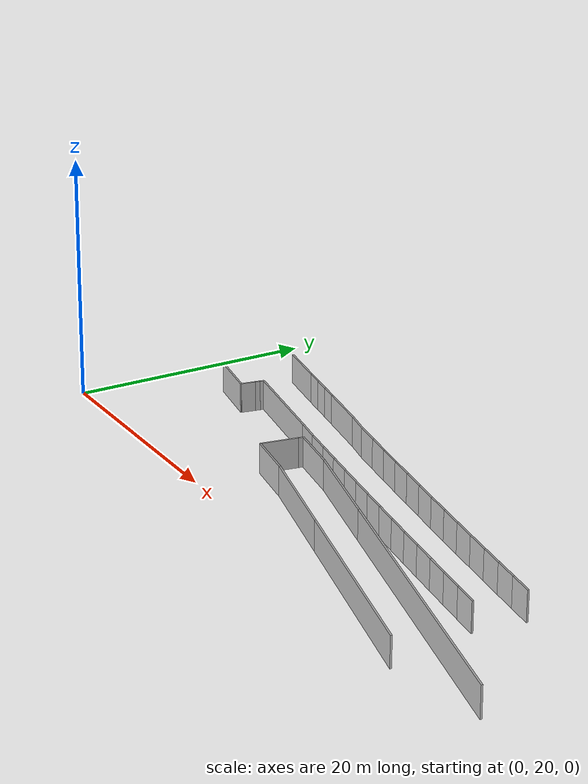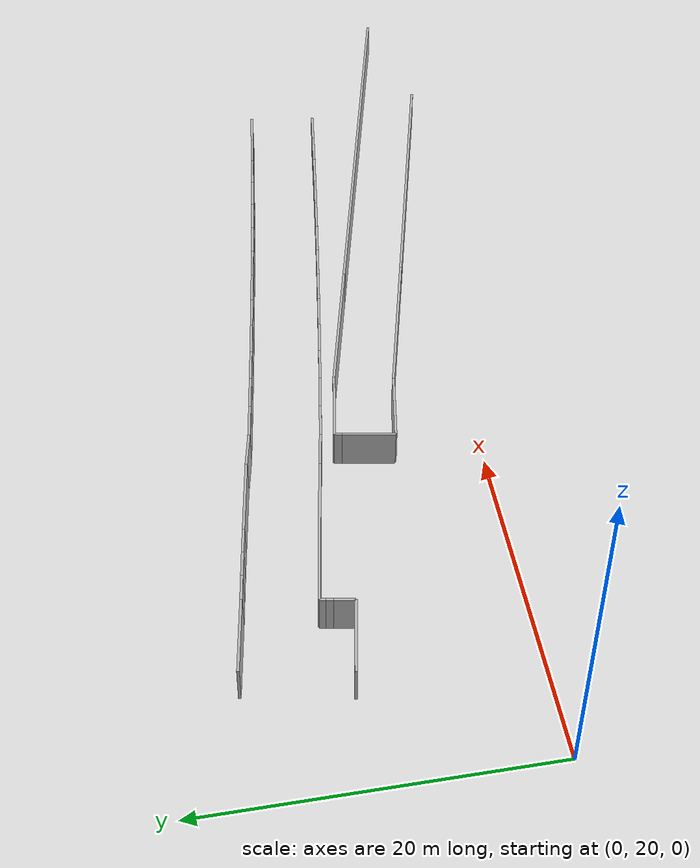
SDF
<?xml version="1.0" ?>
<sdf version="1.6">
  <model name="sps_2203">
    <pose frame="">0 0 0 0 -0 0</pose>
    <static>1</static>
    <self_collide>0</self_collide>
    <allow_auto_disable>0</allow_auto_disable>
    <link name="Wall33">
      <kinematic>0</kinematic>
      <gravity>1</gravity>
      <self_collide>0</self_collide>
      <collision name="collision">
        <geometry>
          <box>
            <size>9.35856 0.15 2.5</size>
          </box>
        </geometry>
        <pose frame="">0 0 0 0 -0 0</pose>
      </collision>
      <visual name="visual">
        <geometry>
          <box>
            <size>9.35856 0.15 2.5</size>
          </box>
        </geometry>
        <pose frame="">0 0 0 0 -0 0</pose>
        <cast_shadows>1</cast_shadows>
        <transparency>0.0</transparency>
      </visual>
      <pose frame="">14.7813 30.5347 1.25 0 0 -0.168777</pose>
    </link>
    <link name="Wall200">
      <kinematic>0</kinematic>
      <gravity>1</gravity>
      <self_collide>0</self_collide>
      <collision name="collision">
        <geometry>
          <box>
            <size>4.50047 0.15 2.5</size>
          </box>
        </geometry>
        <pose frame="">0 0 0 0 -0 0</pose>
      </collision>
      <visual name="visual">
        <geometry>
          <box>
            <size>4.50047 0.15 2.5</size>
          </box>
        </geometry>
        <pose frame="">0 0 0 0 -0 0</pose>
        <cast_shadows>1</cast_shadows>
        <transparency>0.0</transparency>
      </visual>
      <pose frame="">8.66296 35.7411 1.25 0 0 -0.168696</pose>
    </link>
    <link name="Wall202">
      <kinematic>0</kinematic>
      <gravity>1</gravity>
      <self_collide>0</self_collide>
      <collision name="collision">
        <geometry>
          <box>
            <size>17.6974 0.15 2.5</size>
          </box>
        </geometry>
        <pose frame="">0 0 0 0 -0 0</pose>
      </collision>
      <visual name="visual">
        <geometry>
          <box>
            <size>17.6974 0.15 2.5</size>
          </box>
        </geometry>
        <pose frame="">0 0 0 0 -0 0</pose>
        <cast_shadows>1</cast_shadows>
        <transparency>0.0</transparency>
      </visual>
      <pose frame="">43.0625 20.0047 1.25 0 -0 2.90063</pose>
    </link>
    <link name="Wall203">
      <kinematic>0</kinematic>
      <gravity>1</gravity>
      <self_collide>0</self_collide>
      <collision name="collision">
        <geometry>
          <box>
            <size>9.57358 0.15 2.5</size>
          </box>
        </geometry>
        <pose frame="">0 0 0 0 -0 0</pose>
      </collision>
      <visual name="visual">
        <geometry>
          <box>
            <size>9.57358 0.15 2.5</size>
          </box>
        </geometry>
        <pose frame="">0 0 0 0 -0 0</pose>
        <cast_shadows>1</cast_shadows>
        <transparency>0.0</transparency>
      </visual>
      <pose frame="">29.8209 23.2586 1.25 0 -0 2.90063</pose>
    </link>
    <link name="Wall295">
      <kinematic>0</kinematic>
      <gravity>1</gravity>
      <self_collide>0</self_collide>
      <collision name="collision">
        <geometry>
          <box>
            <size>3.07376 0.15 2.5</size>
          </box>
        </geometry>
        <pose frame="">0 0 0 0 -0 0</pose>
      </collision>
      <visual name="visual">
        <geometry>
          <box>
            <size>3.07376 0.15 2.5</size>
          </box>
        </geometry>
        <pose frame="">0 0 0 0 -0 0</pose>
        <cast_shadows>1</cast_shadows>
        <transparency>0.0</transparency>
      </visual>
      <pose frame="">21.1081 26.6262 1.25 0 0 -1.73465</pose>
    </link>
    <link name="Wall365">
      <kinematic>0</kinematic>
      <gravity>1</gravity>
      <self_collide>0</self_collide>
      <collision name="collision">
        <geometry>
          <box>
            <size>4.50641 0.15 2.5</size>
          </box>
        </geometry>
        <pose frame="">0 0 0 0 -0 0</pose>
      </collision>
      <visual name="visual">
        <geometry>
          <box>
            <size>4.50641 0.15 2.5</size>
          </box>
        </geometry>
        <pose frame="">0 0 0 0 -0 0</pose>
        <cast_shadows>1</cast_shadows>
        <transparency>0.0</transparency>
      </visual>
      <pose frame="">23.6518 28.1995 1.25 0 0 -0.163692</pose>
    </link>
    <link name="Wall439">
      <kinematic>0</kinematic>
      <gravity>1</gravity>
      <self_collide>0</self_collide>
      <collision name="collision">
        <geometry>
          <box>
            <size>0.400879 0.15 2.5</size>
          </box>
        </geometry>
        <pose frame="">0 0 0 0 -0 0</pose>
      </collision>
      <visual name="visual">
        <geometry>
          <box>
            <size>0.400879 0.15 2.5</size>
          </box>
        </geometry>
        <pose frame="">0 0 0 0 -0 0</pose>
        <cast_shadows>1</cast_shadows>
        <transparency>0.0</transparency>
      </visual>
      <pose frame="">10.0657 30.79 1.25 0 0 -1.74726</pose>
    </link>
    <link name="Wall440">
      <kinematic>0</kinematic>
      <gravity>1</gravity>
      <self_collide>0</self_collide>
      <collision name="collision">
        <geometry>
          <box>
            <size>2.19394 0.15 2.5</size>
          </box>
        </geometry>
        <pose frame="">0 0 0 0 -0 0</pose>
      </collision>
      <visual name="visual">
        <geometry>
          <box>
            <size>2.19394 0.15 2.5</size>
          </box>
        </geometry>
        <pose frame="">0 0 0 0 -0 0</pose>
        <cast_shadows>1</cast_shadows>
        <transparency>0.0</transparency>
      </visual>
      <pose frame="">20.4733 29.552 1.25 0 0 -0.180274</pose>
    </link>
    <link name="Wall441">
      <kinematic>0</kinematic>
      <gravity>1</gravity>
      <self_collide>0</self_collide>
      <collision name="collision">
        <geometry>
          <box>
            <size>4.37286 0.15 2.5</size>
          </box>
        </geometry>
        <pose frame="">0 0 0 0 -0 0</pose>
      </collision>
      <visual name="visual">
        <geometry>
          <box>
            <size>4.37286 0.15 2.5</size>
          </box>
        </geometry>
        <pose frame="">0 0 0 0 -0 0</pose>
        <cast_shadows>1</cast_shadows>
        <transparency>0.0</transparency>
      </visual>
      <pose frame="">23.0149 24.7554 1.25 0 0 -0.162852</pose>
    </link>
    <link name="Wall547">
      <kinematic>0</kinematic>
      <gravity>1</gravity>
      <self_collide>0</self_collide>
      <collision name="collision">
        <geometry>
          <box>
            <size>4.49949 0.15 2.5</size>
          </box>
        </geometry>
        <pose frame="">0 0 0 0 -0 0</pose>
      </collision>
      <visual name="visual">
        <geometry>
          <box>
            <size>4.49949 0.15 2.5</size>
          </box>
        </geometry>
        <pose frame="">0 0 0 0 -0 0</pose>
        <cast_shadows>1</cast_shadows>
        <transparency>0.0</transparency>
      </visual>
      <pose frame="">7.60625 29.817 1.25 0 -0 2.96515</pose>
    </link>
    <link name="Wall548">
      <kinematic>0</kinematic>
      <gravity>1</gravity>
      <self_collide>0</self_collide>
      <collision name="collision">
        <geometry>
          <box>
            <size>1.18918 0.15 2.5</size>
          </box>
        </geometry>
        <pose frame="">0 0 0 0 -0 0</pose>
      </collision>
      <visual name="visual">
        <geometry>
          <box>
            <size>1.18918 0.15 2.5</size>
          </box>
        </geometry>
        <pose frame="">0 0 0 0 -0 0</pose>
        <cast_shadows>1</cast_shadows>
        <transparency>0.0</transparency>
      </visual>
      <pose frame="">9.92577 30.0074 1.25 0 0 -1.74782</pose>
    </link>
    <link name="Wall549">
      <kinematic>0</kinematic>
      <gravity>1</gravity>
      <self_collide>0</self_collide>
      <collision name="collision">
        <geometry>
          <box>
            <size>0.340164 0.15 2.5</size>
          </box>
        </geometry>
        <pose frame="">0 0 0 0 -0 0</pose>
      </collision>
      <visual name="visual">
        <geometry>
          <box>
            <size>0.340164 0.15 2.5</size>
          </box>
        </geometry>
        <pose frame="">0 0 0 0 -0 0</pose>
        <cast_shadows>1</cast_shadows>
        <transparency>0.0</transparency>
      </visual>
      <pose frame="">10.1347 31.154 1.25 0 0 -1.77094</pose>
    </link>
    <link name="Wall615">
      <kinematic>0</kinematic>
      <gravity>1</gravity>
      <self_collide>0</self_collide>
      <collision name="collision">
        <geometry>
          <box>
            <size>0.429903 0.15 2.5</size>
          </box>
        </geometry>
        <pose frame="">0 0 0 0 -0 0</pose>
      </collision>
      <visual name="visual">
        <geometry>
          <box>
            <size>0.429903 0.15 2.5</size>
          </box>
        </geometry>
        <pose frame="">0 0 0 0 -0 0</pose>
        <cast_shadows>1</cast_shadows>
        <transparency>0.0</transparency>
      </visual>
      <pose frame="">21.3938 28.3546 1.25 0 0 -1.73394</pose>
    </link>
    <link name="Wall616">
      <kinematic>0</kinematic>
      <gravity>1</gravity>
      <self_collide>0</self_collide>
      <collision name="collision">
        <geometry>
          <box>
            <size>2.20188 0.15 2.5</size>
          </box>
        </geometry>
        <pose frame="">0 0 0 0 -0 0</pose>
      </collision>
      <visual name="visual">
        <geometry>
          <box>
            <size>2.20188 0.15 2.5</size>
          </box>
        </geometry>
        <pose frame="">0 0 0 0 -0 0</pose>
        <cast_shadows>1</cast_shadows>
        <transparency>0.0</transparency>
      </visual>
      <pose frame="">21.1452 33.6065 1.25 0 0 -0.20715</pose>
    </link>
    <link name="Wall617">
      <kinematic>0</kinematic>
      <gravity>1</gravity>
      <self_collide>0</self_collide>
      <collision name="collision">
        <geometry>
          <box>
            <size>8.85029 0.15 2.5</size>
          </box>
        </geometry>
        <pose frame="">0 0 0 0 -0 0</pose>
      </collision>
      <visual name="visual">
        <geometry>
          <box>
            <size>8.85029 0.15 2.5</size>
          </box>
        </geometry>
        <pose frame="">0 0 0 0 -0 0</pose>
        <cast_shadows>1</cast_shadows>
        <transparency>0.0</transparency>
      </visual>
      <pose frame="">30.1721 26.7763 1.25 0 0 -0.240956</pose>
    </link>
    <link name="Wall618">
      <kinematic>0</kinematic>
      <gravity>1</gravity>
      <self_collide>0</self_collide>
      <collision name="collision">
        <geometry>
          <box>
            <size>26.2423 0.15 2.5</size>
          </box>
        </geometry>
        <pose frame="">0 0 0 0 -0 0</pose>
      </collision>
      <visual name="visual">
        <geometry>
          <box>
            <size>26.2423 0.15 2.5</size>
          </box>
        </geometry>
        <pose frame="">0 0 0 0 -0 0</pose>
        <cast_shadows>1</cast_shadows>
        <transparency>0.0</transparency>
      </visual>
      <pose frame="">47.2115 22.5892 1.25 0 0 -0.240956</pose>
    </link>
    <link name="Wall4791">
      <kinematic>0</kinematic>
      <gravity>1</gravity>
      <self_collide>0</self_collide>
      <collision name="collision">
        <geometry>
          <box>
            <size>1.55218 0.15 2.5</size>
          </box>
        </geometry>
        <pose frame="">0 0 0 0 -0 0</pose>
      </collision>
      <visual name="visual">
        <geometry>
          <box>
            <size>1.55218 0.15 2.5</size>
          </box>
        </geometry>
        <pose frame="">0 0 0 0 -0 0</pose>
        <cast_shadows>1</cast_shadows>
        <transparency>0.0</transparency>
      </visual>
      <pose frame="">11.6475 35.2404 1.25 0 0 -0.15902</pose>
    </link>
    <link name="Wall4792">
      <kinematic>0</kinematic>
      <gravity>1</gravity>
      <self_collide>0</self_collide>
      <collision name="collision">
        <geometry>
          <box>
            <size>1.55208 0.15 2.5</size>
          </box>
        </geometry>
        <pose frame="">0 0 0 0 -0 0</pose>
      </collision>
      <visual name="visual">
        <geometry>
          <box>
            <size>1.55208 0.15 2.5</size>
          </box>
        </geometry>
        <pose frame="">0 0 0 0 -0 0</pose>
        <cast_shadows>1</cast_shadows>
        <transparency>0.0</transparency>
      </visual>
      <pose frame="">13.1796 34.9919 1.25 0 0 -0.162576</pose>
    </link>
    <link name="Wall4793">
      <kinematic>0</kinematic>
      <gravity>1</gravity>
      <self_collide>0</self_collide>
      <collision name="collision">
        <geometry>
          <box>
            <size>1.55225 0.15 2.5</size>
          </box>
        </geometry>
        <pose frame="">0 0 0 0 -0 0</pose>
      </collision>
      <visual name="visual">
        <geometry>
          <box>
            <size>1.55225 0.15 2.5</size>
          </box>
        </geometry>
        <pose frame="">0 0 0 0 -0 0</pose>
        <cast_shadows>1</cast_shadows>
        <transparency>0.0</transparency>
      </visual>
      <pose frame="">14.7109 34.7378 1.25 0 0 -0.166345</pose>
    </link>
    <link name="Wall4794">
      <kinematic>0</kinematic>
      <gravity>1</gravity>
      <self_collide>0</self_collide>
      <collision name="collision">
        <geometry>
          <box>
            <size>4.65673 0.15 2.5</size>
          </box>
        </geometry>
        <pose frame="">0 0 0 0 -0 0</pose>
      </collision>
      <visual name="visual">
        <geometry>
          <box>
            <size>4.65673 0.15 2.5</size>
          </box>
        </geometry>
        <pose frame="">0 0 0 0 -0 0</pose>
        <cast_shadows>1</cast_shadows>
        <transparency>0.0</transparency>
      </visual>
      <pose frame="">17.7721 34.2211 1.25 0 0 -0.167502</pose>
    </link>
    <link name="Wall8180">
      <kinematic>0</kinematic>
      <gravity>1</gravity>
      <self_collide>0</self_collide>
      <collision name="collision">
        <geometry>
          <box>
            <size>2.22315 0.15 2.5</size>
          </box>
        </geometry>
        <pose frame="">0 0 0 0 -0 0</pose>
      </collision>
      <visual name="visual">
        <geometry>
          <box>
            <size>2.22315 0.15 2.5</size>
          </box>
        </geometry>
        <pose frame="">0 0 0 0 -0 0</pose>
        <cast_shadows>1</cast_shadows>
        <transparency>0.0</transparency>
      </visual>
      <pose frame="">23.2937 33.2097 1.25 0 0 -0.157719</pose>
    </link>
    <link name="Wall8181">
      <kinematic>0</kinematic>
      <gravity>1</gravity>
      <self_collide>0</self_collide>
      <collision name="collision">
        <geometry>
          <box>
            <size>2.223 0.15 2.5</size>
          </box>
        </geometry>
        <pose frame="">0 0 0 0 -0 0</pose>
      </collision>
      <visual name="visual">
        <geometry>
          <box>
            <size>2.223 0.15 2.5</size>
          </box>
        </geometry>
        <pose frame="">0 0 0 0 -0 0</pose>
        <cast_shadows>1</cast_shadows>
        <transparency>0.0</transparency>
      </visual>
      <pose frame="">25.4896 32.8631 1.25 0 0 -0.155367</pose>
    </link>
    <link name="Wall8182">
      <kinematic>0</kinematic>
      <gravity>1</gravity>
      <self_collide>0</self_collide>
      <collision name="collision">
        <geometry>
          <box>
            <size>2.22293 0.15 2.5</size>
          </box>
        </geometry>
        <pose frame="">0 0 0 0 -0 0</pose>
      </collision>
      <visual name="visual">
        <geometry>
          <box>
            <size>2.22293 0.15 2.5</size>
          </box>
        </geometry>
        <pose frame="">0 0 0 0 -0 0</pose>
        <cast_shadows>1</cast_shadows>
        <transparency>0.0</transparency>
      </visual>
      <pose frame="">27.6861 32.5217 1.25 0 0 -0.15301</pose>
    </link>
    <link name="Wall8183">
      <kinematic>0</kinematic>
      <gravity>1</gravity>
      <self_collide>0</self_collide>
      <collision name="collision">
        <geometry>
          <box>
            <size>2.22296 0.15 2.5</size>
          </box>
        </geometry>
        <pose frame="">0 0 0 0 -0 0</pose>
      </collision>
      <visual name="visual">
        <geometry>
          <box>
            <size>2.22296 0.15 2.5</size>
          </box>
        </geometry>
        <pose frame="">0 0 0 0 -0 0</pose>
        <cast_shadows>1</cast_shadows>
        <transparency>0.0</transparency>
      </visual>
      <pose frame="">29.8835 32.1856 1.25 0 0 -0.150564</pose>
    </link>
    <link name="Wall8184">
      <kinematic>0</kinematic>
      <gravity>1</gravity>
      <self_collide>0</self_collide>
      <collision name="collision">
        <geometry>
          <box>
            <size>2.22299 0.15 2.5</size>
          </box>
        </geometry>
        <pose frame="">0 0 0 0 -0 0</pose>
      </collision>
      <visual name="visual">
        <geometry>
          <box>
            <size>2.22299 0.15 2.5</size>
          </box>
        </geometry>
        <pose frame="">0 0 0 0 -0 0</pose>
        <cast_shadows>1</cast_shadows>
        <transparency>0.0</transparency>
      </visual>
      <pose frame="">32.0817 31.8547 1.25 0 0 -0.148257</pose>
    </link>
    <link name="Wall8185">
      <kinematic>0</kinematic>
      <gravity>1</gravity>
      <self_collide>0</self_collide>
      <collision name="collision">
        <geometry>
          <box>
            <size>2.22305 0.15 2.5</size>
          </box>
        </geometry>
        <pose frame="">0 0 0 0 -0 0</pose>
      </collision>
      <visual name="visual">
        <geometry>
          <box>
            <size>2.22305 0.15 2.5</size>
          </box>
        </geometry>
        <pose frame="">0 0 0 0 -0 0</pose>
        <cast_shadows>1</cast_shadows>
        <transparency>0.0</transparency>
      </visual>
      <pose frame="">34.2808 31.5288 1.25 0 0 -0.146005</pose>
    </link>
    <link name="Wall8186">
      <kinematic>0</kinematic>
      <gravity>1</gravity>
      <self_collide>0</self_collide>
      <collision name="collision">
        <geometry>
          <box>
            <size>2.22306 0.15 2.5</size>
          </box>
        </geometry>
        <pose frame="">0 0 0 0 -0 0</pose>
      </collision>
      <visual name="visual">
        <geometry>
          <box>
            <size>2.22306 0.15 2.5</size>
          </box>
        </geometry>
        <pose frame="">0 0 0 0 -0 0</pose>
        <cast_shadows>1</cast_shadows>
        <transparency>0.0</transparency>
      </visual>
      <pose frame="">36.4806 31.2081 1.25 0 0 -0.143536</pose>
    </link>
    <link name="Wall8187">
      <kinematic>0</kinematic>
      <gravity>1</gravity>
      <self_collide>0</self_collide>
      <collision name="collision">
        <geometry>
          <box>
            <size>2.22295 0.15 2.5</size>
          </box>
        </geometry>
        <pose frame="">0 0 0 0 -0 0</pose>
      </collision>
      <visual name="visual">
        <geometry>
          <box>
            <size>2.22295 0.15 2.5</size>
          </box>
        </geometry>
        <pose frame="">0 0 0 0 -0 0</pose>
        <cast_shadows>1</cast_shadows>
        <transparency>0.0</transparency>
      </visual>
      <pose frame="">38.6811 30.8926 1.25 0 0 -0.141268</pose>
    </link>
    <link name="Wall8188">
      <kinematic>0</kinematic>
      <gravity>1</gravity>
      <self_collide>0</self_collide>
      <collision name="collision">
        <geometry>
          <box>
            <size>2.22301 0.15 2.5</size>
          </box>
        </geometry>
        <pose frame="">0 0 0 0 -0 0</pose>
      </collision>
      <visual name="visual">
        <geometry>
          <box>
            <size>2.22301 0.15 2.5</size>
          </box>
        </geometry>
        <pose frame="">0 0 0 0 -0 0</pose>
        <cast_shadows>1</cast_shadows>
        <transparency>0.0</transparency>
      </visual>
      <pose frame="">40.8823 30.5822 1.25 0 0 -0.138907</pose>
    </link>
    <link name="Wall8189">
      <kinematic>0</kinematic>
      <gravity>1</gravity>
      <self_collide>0</self_collide>
      <collision name="collision">
        <geometry>
          <box>
            <size>2.22306 0.15 2.5</size>
          </box>
        </geometry>
        <pose frame="">0 0 0 0 -0 0</pose>
      </collision>
      <visual name="visual">
        <geometry>
          <box>
            <size>2.22306 0.15 2.5</size>
          </box>
        </geometry>
        <pose frame="">0 0 0 0 -0 0</pose>
        <cast_shadows>1</cast_shadows>
        <transparency>0.0</transparency>
      </visual>
      <pose frame="">43.0843 30.2771 1.25 0 0 -0.136465</pose>
    </link>
    <link name="Wall8190">
      <kinematic>0</kinematic>
      <gravity>1</gravity>
      <self_collide>0</self_collide>
      <collision name="collision">
        <geometry>
          <box>
            <size>2.22298 0.15 2.5</size>
          </box>
        </geometry>
        <pose frame="">0 0 0 0 -0 0</pose>
      </collision>
      <visual name="visual">
        <geometry>
          <box>
            <size>2.22298 0.15 2.5</size>
          </box>
        </geometry>
        <pose frame="">0 0 0 0 -0 0</pose>
        <cast_shadows>1</cast_shadows>
        <transparency>0.0</transparency>
      </visual>
      <pose frame="">45.2869 29.9772 1.25 0 0 -0.13417</pose>
    </link>
    <link name="Wall8191">
      <kinematic>0</kinematic>
      <gravity>1</gravity>
      <self_collide>0</self_collide>
      <collision name="collision">
        <geometry>
          <box>
            <size>2.22291 0.15 2.5</size>
          </box>
        </geometry>
        <pose frame="">0 0 0 0 -0 0</pose>
      </collision>
      <visual name="visual">
        <geometry>
          <box>
            <size>2.22291 0.15 2.5</size>
          </box>
        </geometry>
        <pose frame="">0 0 0 0 -0 0</pose>
        <cast_shadows>1</cast_shadows>
        <transparency>0.0</transparency>
      </visual>
      <pose frame="">47.4903 29.6824 1.25 0 0 -0.131848</pose>
    </link>
    <link name="Wall8192">
      <kinematic>0</kinematic>
      <gravity>1</gravity>
      <self_collide>0</self_collide>
      <collision name="collision">
        <geometry>
          <box>
            <size>2.22319 0.15 2.5</size>
          </box>
        </geometry>
        <pose frame="">0 0 0 0 -0 0</pose>
      </collision>
      <visual name="visual">
        <geometry>
          <box>
            <size>2.22319 0.15 2.5</size>
          </box>
        </geometry>
        <pose frame="">0 0 0 0 -0 0</pose>
        <cast_shadows>1</cast_shadows>
        <transparency>0.0</transparency>
      </visual>
      <pose frame="">49.6944 29.3928 1.25 0 0 -0.129449</pose>
    </link>
    <link name="Wall8861">
      <kinematic>0</kinematic>
      <gravity>1</gravity>
      <self_collide>0</self_collide>
      <collision name="collision">
        <geometry>
          <box>
            <size>2.23136 0.15 2.5</size>
          </box>
        </geometry>
        <pose frame="">0 0 0 0 -0 0</pose>
      </collision>
      <visual name="visual">
        <geometry>
          <box>
            <size>2.23136 0.15 2.5</size>
          </box>
        </geometry>
        <pose frame="">0 0 0 0 -0 0</pose>
        <cast_shadows>1</cast_shadows>
        <transparency>0.0</transparency>
      </visual>
      <pose frame="">22.654 29.178 1.25 0 0 -0.1596</pose>
    </link>
    <link name="Wall8862">
      <kinematic>0</kinematic>
      <gravity>1</gravity>
      <self_collide>0</self_collide>
      <collision name="collision">
        <geometry>
          <box>
            <size>2.23117 0.15 2.5</size>
          </box>
        </geometry>
        <pose frame="">0 0 0 0 -0 0</pose>
      </collision>
      <visual name="visual">
        <geometry>
          <box>
            <size>2.23117 0.15 2.5</size>
          </box>
        </geometry>
        <pose frame="">0 0 0 0 -0 0</pose>
        <cast_shadows>1</cast_shadows>
        <transparency>0.0</transparency>
      </visual>
      <pose frame="">24.8573 28.8259 1.25 0 0 -0.157341</pose>
    </link>
    <link name="Wall8863">
      <kinematic>0</kinematic>
      <gravity>1</gravity>
      <self_collide>0</self_collide>
      <collision name="collision">
        <geometry>
          <box>
            <size>2.23111 0.15 2.5</size>
          </box>
        </geometry>
        <pose frame="">0 0 0 0 -0 0</pose>
      </collision>
      <visual name="visual">
        <geometry>
          <box>
            <size>2.23111 0.15 2.5</size>
          </box>
        </geometry>
        <pose frame="">0 0 0 0 -0 0</pose>
        <cast_shadows>1</cast_shadows>
        <transparency>0.0</transparency>
      </visual>
      <pose frame="">27.0613 28.479 1.25 0 0 -0.154881</pose>
    </link>
    <link name="Wall8864">
      <kinematic>0</kinematic>
      <gravity>1</gravity>
      <self_collide>0</self_collide>
      <collision name="collision">
        <geometry>
          <box>
            <size>2.2315 0.15 2.5</size>
          </box>
        </geometry>
        <pose frame="">0 0 0 0 -0 0</pose>
      </collision>
      <visual name="visual">
        <geometry>
          <box>
            <size>2.2315 0.15 2.5</size>
          </box>
        </geometry>
        <pose frame="">0 0 0 0 -0 0</pose>
        <cast_shadows>1</cast_shadows>
        <transparency>0.0</transparency>
      </visual>
      <pose frame="">29.2663 28.1373 1.25 0 0 -0.152612</pose>
    </link>
    <link name="Wall8865">
      <kinematic>0</kinematic>
      <gravity>1</gravity>
      <self_collide>0</self_collide>
      <collision name="collision">
        <geometry>
          <box>
            <size>2.23113 0.15 2.5</size>
          </box>
        </geometry>
        <pose frame="">0 0 0 0 -0 0</pose>
      </collision>
      <visual name="visual">
        <geometry>
          <box>
            <size>2.23113 0.15 2.5</size>
          </box>
        </geometry>
        <pose frame="">0 0 0 0 -0 0</pose>
        <cast_shadows>1</cast_shadows>
        <transparency>0.0</transparency>
      </visual>
      <pose frame="">31.472 27.8007 1.25 0 0 -0.150258</pose>
    </link>
    <link name="Wall8866">
      <kinematic>0</kinematic>
      <gravity>1</gravity>
      <self_collide>0</self_collide>
      <collision name="collision">
        <geometry>
          <box>
            <size>2.23118 0.15 2.5</size>
          </box>
        </geometry>
        <pose frame="">0 0 0 0 -0 0</pose>
      </collision>
      <visual name="visual">
        <geometry>
          <box>
            <size>2.23118 0.15 2.5</size>
          </box>
        </geometry>
        <pose frame="">0 0 0 0 -0 0</pose>
        <cast_shadows>1</cast_shadows>
        <transparency>0.0</transparency>
      </visual>
      <pose frame="">33.6785 27.4694 1.25 0 0 -0.14782</pose>
    </link>
    <link name="Wall8867">
      <kinematic>0</kinematic>
      <gravity>1</gravity>
      <self_collide>0</self_collide>
      <collision name="collision">
        <geometry>
          <box>
            <size>2.23116 0.15 2.5</size>
          </box>
        </geometry>
        <pose frame="">0 0 0 0 -0 0</pose>
      </collision>
      <visual name="visual">
        <geometry>
          <box>
            <size>2.23116 0.15 2.5</size>
          </box>
        </geometry>
        <pose frame="">0 0 0 0 -0 0</pose>
        <cast_shadows>1</cast_shadows>
        <transparency>0.0</transparency>
      </visual>
      <pose frame="">35.8857 27.1433 1.25 0 0 -0.145526</pose>
    </link>
    <link name="Wall8868">
      <kinematic>0</kinematic>
      <gravity>1</gravity>
      <self_collide>0</self_collide>
      <collision name="collision">
        <geometry>
          <box>
            <size>2.23121 0.15 2.5</size>
          </box>
        </geometry>
        <pose frame="">0 0 0 0 -0 0</pose>
      </collision>
      <visual name="visual">
        <geometry>
          <box>
            <size>2.23121 0.15 2.5</size>
          </box>
        </geometry>
        <pose frame="">0 0 0 0 -0 0</pose>
        <cast_shadows>1</cast_shadows>
        <transparency>0.0</transparency>
      </visual>
      <pose frame="">38.0937 26.8223 1.25 0 0 -0.143201</pose>
    </link>
    <link name="Wall8869">
      <kinematic>0</kinematic>
      <gravity>1</gravity>
      <self_collide>0</self_collide>
      <collision name="collision">
        <geometry>
          <box>
            <size>2.2315 0.15 2.5</size>
          </box>
        </geometry>
        <pose frame="">0 0 0 0 -0 0</pose>
      </collision>
      <visual name="visual">
        <geometry>
          <box>
            <size>2.2315 0.15 2.5</size>
          </box>
        </geometry>
        <pose frame="">0 0 0 0 -0 0</pose>
        <cast_shadows>1</cast_shadows>
        <transparency>0.0</transparency>
      </visual>
      <pose frame="">40.3025 26.5065 1.25 0 0 -0.140833</pose>
    </link>
    <link name="Wall8870">
      <kinematic>0</kinematic>
      <gravity>1</gravity>
      <self_collide>0</self_collide>
      <collision name="collision">
        <geometry>
          <box>
            <size>2.23093 0.15 2.5</size>
          </box>
        </geometry>
        <pose frame="">0 0 0 0 -0 0</pose>
      </collision>
      <visual name="visual">
        <geometry>
          <box>
            <size>2.23093 0.15 2.5</size>
          </box>
        </geometry>
        <pose frame="">0 0 0 0 -0 0</pose>
        <cast_shadows>1</cast_shadows>
        <transparency>0.0</transparency>
      </visual>
      <pose frame="">42.512 26.196 1.25 0 0 -0.138411</pose>
    </link>
    <link name="Wall8871">
      <kinematic>0</kinematic>
      <gravity>1</gravity>
      <self_collide>0</self_collide>
      <collision name="collision">
        <geometry>
          <box>
            <size>2.2313 0.15 2.5</size>
          </box>
        </geometry>
        <pose frame="">0 0 0 0 -0 0</pose>
      </collision>
      <visual name="visual">
        <geometry>
          <box>
            <size>2.2313 0.15 2.5</size>
          </box>
        </geometry>
        <pose frame="">0 0 0 0 -0 0</pose>
        <cast_shadows>1</cast_shadows>
        <transparency>0.0</transparency>
      </visual>
      <pose frame="">44.7222 25.8906 1.25 0 0 -0.136207</pose>
    </link>
    <link name="Wall8872">
      <kinematic>0</kinematic>
      <gravity>1</gravity>
      <self_collide>0</self_collide>
      <collision name="collision">
        <geometry>
          <box>
            <size>2.2313 0.15 2.5</size>
          </box>
        </geometry>
        <pose frame="">0 0 0 0 -0 0</pose>
      </collision>
      <visual name="visual">
        <geometry>
          <box>
            <size>2.2313 0.15 2.5</size>
          </box>
        </geometry>
        <pose frame="">0 0 0 0 -0 0</pose>
        <cast_shadows>1</cast_shadows>
        <transparency>0.0</transparency>
      </visual>
      <pose frame="">46.9332 25.5903 1.25 0 0 -0.133777</pose>
    </link>
    <link name="Wall8873">
      <kinematic>0</kinematic>
      <gravity>1</gravity>
      <self_collide>0</self_collide>
      <collision name="collision">
        <geometry>
          <box>
            <size>2.23127 0.15 2.5</size>
          </box>
        </geometry>
        <pose frame="">0 0 0 0 -0 0</pose>
      </collision>
      <visual name="visual">
        <geometry>
          <box>
            <size>2.23127 0.15 2.5</size>
          </box>
        </geometry>
        <pose frame="">0 0 0 0 -0 0</pose>
        <cast_shadows>1</cast_shadows>
        <transparency>0.0</transparency>
      </visual>
      <pose frame="">49.1449 25.2953 1.25 0 0 -0.131405</pose>
    </link>
  </model>
</sdf>
